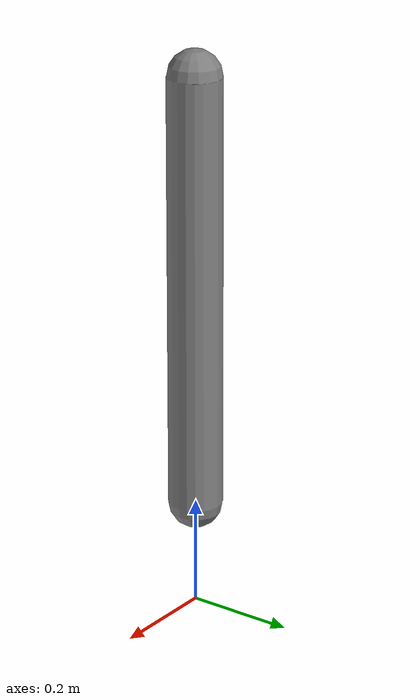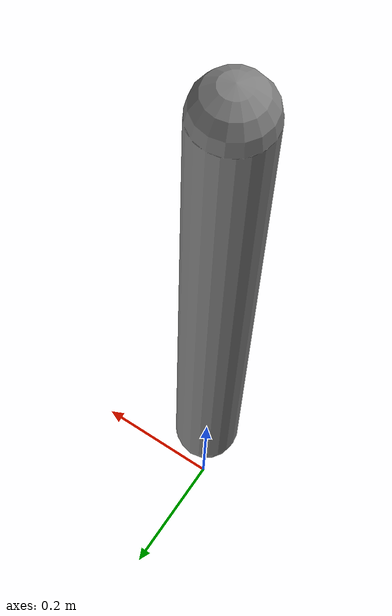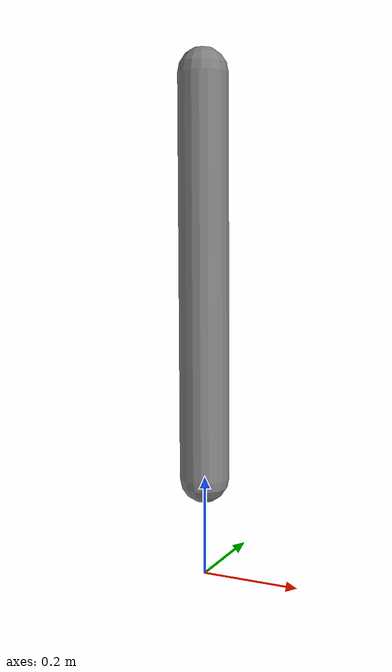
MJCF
<mujoco model="joint_lock">
            <option gravity="0 0 -9.81" timestep="0.001"/>
            <worldbody>
                <body name="pendulum" pos="0 0 1">
                    <joint name="hinge" type="hinge" axis="0 1 0"/>
                    <geom type="capsule" size="0.05 0.4" pos="0 0 -0.4" mass="1.0"/>
                </body>
            </worldbody>
            <equality>
                <joint joint1="hinge" polycoef="0.5"/>
            </equality>
        </mujoco>
